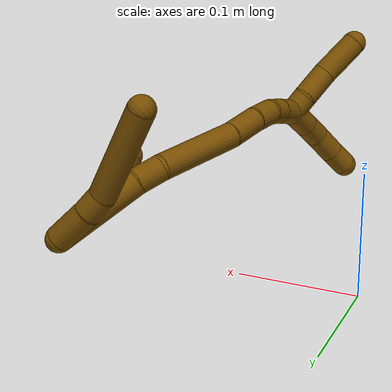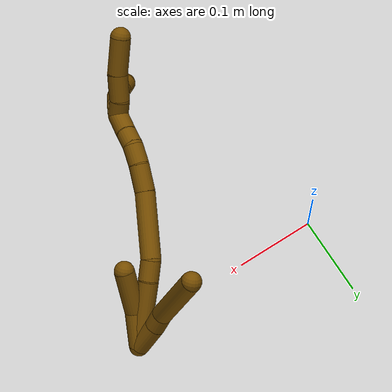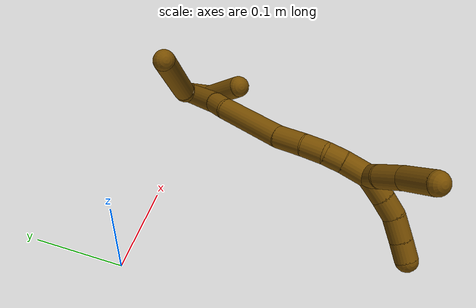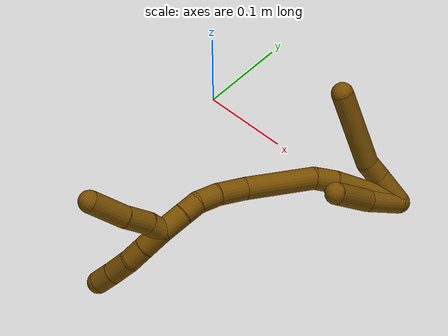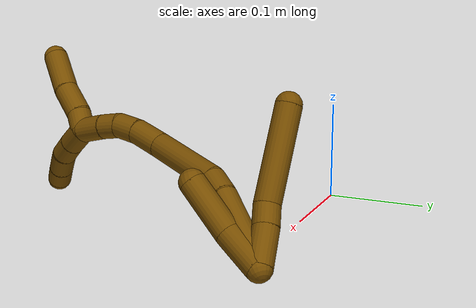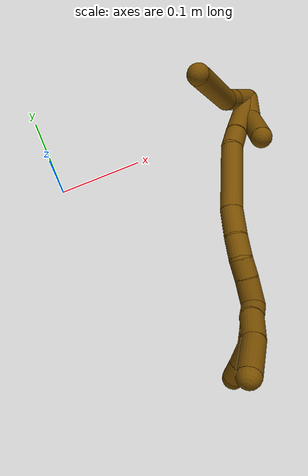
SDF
<sdf version="1.7">
 <world name="default">
  <model name="12">
   <static>0</static>
   <link name="12">
    <collision name="collision-cylinder-e_1_2_8">
     <pose>-0.006769 0.003945 0.017259 -0.224714 -0.365173 0.041661</pose>
     <geometry><cylinder><radius>0.0125</radius><length>0.037908</length></cylinder></geometry>
     <surface>
      <friction><ode><mu>1.16</mu><mu2>1.16</mu2><slip1>0</slip1><slip2>0</slip2></ode></friction>
      <contact><ode><kp>1e+06</kp><kd>1</kd><max_vel>0</max_vel><min_depth>0.001</min_depth></ode></contact>
     </surface>
    </collision>
    <visual name="visual-cylinder-e_1_2_8">
     <pose>-0.006769 0.003945 0.017259 -0.224714 -0.365173 0.041661</pose>
     <geometry><cylinder><radius>0.0125</radius><length>0.037908</length></cylinder></geometry>
     <material><ambient>0.466667 0.301961 0 1</ambient></material>
    </visual>
    <collision name="collision-cylinder-e_2_8_9">
     <pose>-0.016147 0.010378 0.044635 -0.241126 -0.245429 0.029882</pose>
     <geometry><cylinder><radius>0.0125</radius><length>0.021481</length></cylinder></geometry>
     <surface>
      <friction><ode><mu>1.16</mu><mu2>1.16</mu2><slip1>0</slip1><slip2>0</slip2></ode></friction>
      <contact><ode><kp>1e+06</kp><kd>1</kd><max_vel>0</max_vel><min_depth>0.001</min_depth></ode></contact>
     </surface>
    </collision>
    <visual name="visual-cylinder-e_2_8_9">
     <pose>-0.016147 0.010378 0.044635 -0.241126 -0.245429 0.029882</pose>
     <geometry><cylinder><radius>0.0125</radius><length>0.021481</length></cylinder></geometry>
     <material><ambient>0.466667 0.301961 0 1</ambient></material>
    </visual>
    <collision name="collision-cylinder-e_3_9_6">
     <pose>-0.02982 0.036551 0.091755 -0.569373 -0.24669 0.072527</pose>
     <geometry><cylinder><radius>0.0125</radius><length>0.090611</length></cylinder></geometry>
     <surface>
      <friction><ode><mu>1.16</mu><mu2>1.16</mu2><slip1>0</slip1><slip2>0</slip2></ode></friction>
      <contact><ode><kp>1e+06</kp><kd>1</kd><max_vel>0</max_vel><min_depth>0.001</min_depth></ode></contact>
     </surface>
    </collision>
    <visual name="visual-cylinder-e_3_9_6">
     <pose>-0.02982 0.036551 0.091755 -0.569373 -0.24669 0.072527</pose>
     <geometry><cylinder><radius>0.0125</radius><length>0.090611</length></cylinder></geometry>
     <material><ambient>0.466667 0.301961 0 1</ambient></material>
    </visual>
    <collision name="collision-cylinder-e_1_2_10">
     <pose>0.006273 -0.005224 0.02043 0.250328 0.289146 0.036632</pose>
     <geometry><cylinder><radius>0.0125</radius><length>0.044001</length></cylinder></geometry>
     <surface>
      <friction><ode><mu>1.16</mu><mu2>1.16</mu2><slip1>0</slip1><slip2>0</slip2></ode></friction>
      <contact><ode><kp>1e+06</kp><kd>1</kd><max_vel>0</max_vel><min_depth>0.001</min_depth></ode></contact>
     </surface>
    </collision>
    <visual name="visual-cylinder-e_1_2_10">
     <pose>0.006273 -0.005224 0.02043 0.250328 0.289146 0.036632</pose>
     <geometry><cylinder><radius>0.0125</radius><length>0.044001</length></cylinder></geometry>
     <material><ambient>0.466667 0.301961 0 1</ambient></material>
    </visual>
    <collision name="collision-cylinder-e_2_10_5">
     <pose>0.023285 -0.009918 0.066713 -0.020496 0.393619 -0.004087</pose>
     <geometry><cylinder><radius>0.0125</radius><length>0.055999</length></cylinder></geometry>
     <surface>
      <friction><ode><mu>1.16</mu><mu2>1.16</mu2><slip1>0</slip1><slip2>0</slip2></ode></friction>
      <contact><ode><kp>1e+06</kp><kd>1</kd><max_vel>0</max_vel><min_depth>0.001</min_depth></ode></contact>
     </surface>
    </collision>
    <visual name="visual-cylinder-e_2_10_5">
     <pose>0.023285 -0.009918 0.066713 -0.020496 0.393619 -0.004087</pose>
     <geometry><cylinder><radius>0.0125</radius><length>0.055999</length></cylinder></geometry>
     <material><ambient>0.466667 0.301961 0 1</ambient></material>
    </visual>
    <collision name="collision-cylinder-e_1_2_11">
     <pose>0.001624 -0.00761 0.041193 0.182679 0.038754 0.00355</pose>
     <geometry><cylinder><radius>0.0125</radius><length>0.083844</length></cylinder></geometry>
     <surface>
      <friction><ode><mu>1.16</mu><mu2>1.16</mu2><slip1>0</slip1><slip2>0</slip2></ode></friction>
      <contact><ode><kp>1e+06</kp><kd>1</kd><max_vel>0</max_vel><min_depth>0.001</min_depth></ode></contact>
     </surface>
    </collision>
    <visual name="visual-cylinder-e_1_2_11">
     <pose>0.001624 -0.00761 0.041193 0.182679 0.038754 0.00355</pose>
     <geometry><cylinder><radius>0.0125</radius><length>0.083844</length></cylinder></geometry>
     <material><ambient>0.466667 0.301961 0 1</ambient></material>
    </visual>
    <collision name="collision-cylinder-e_2_11_12">
     <pose>0.003902 -0.019362 0.094423 0.331438 0.051321 0.008585</pose>
     <geometry><cylinder><radius>0.0125</radius><length>0.025492</length></cylinder></geometry>
     <surface>
      <friction><ode><mu>1.16</mu><mu2>1.16</mu2><slip1>0</slip1><slip2>0</slip2></ode></friction>
      <contact><ode><kp>1e+06</kp><kd>1</kd><max_vel>0</max_vel><min_depth>0.001</min_depth></ode></contact>
     </surface>
    </collision>
    <visual name="visual-cylinder-e_2_11_12">
     <pose>0.003902 -0.019362 0.094423 0.331438 0.051321 0.008585</pose>
     <geometry><cylinder><radius>0.0125</radius><length>0.025492</length></cylinder></geometry>
     <material><ambient>0.466667 0.301961 0 1</ambient></material>
    </visual>
    <collision name="collision-cylinder-e_3_12_13">
     <pose>0.01458 -0.04452 0.140306 0.555671 0.246496 0.070632</pose>
     <geometry><cylinder><radius>0.0125</radius><length>0.082163</length></cylinder></geometry>
     <surface>
      <friction><ode><mu>1.16</mu><mu2>1.16</mu2><slip1>0</slip1><slip2>0</slip2></ode></friction>
      <contact><ode><kp>1e+06</kp><kd>1</kd><max_vel>0</max_vel><min_depth>0.001</min_depth></ode></contact>
     </surface>
    </collision>
    <visual name="visual-cylinder-e_3_12_13">
     <pose>0.01458 -0.04452 0.140306 0.555671 0.246496 0.070632</pose>
     <geometry><cylinder><radius>0.0125</radius><length>0.082163</length></cylinder></geometry>
     <material><ambient>0.466667 0.301961 0 1</ambient></material>
    </visual>
    <collision name="collision-cylinder-e_4_13_14">
     <pose>0.030892 -0.072985 0.187894 0.496671 0.382439 0.098096</pose>
     <geometry><cylinder><radius>0.0125</radius><length>0.033697</length></cylinder></geometry>
     <surface>
      <friction><ode><mu>1.16</mu><mu2>1.16</mu2><slip1>0</slip1><slip2>0</slip2></ode></friction>
      <contact><ode><kp>1e+06</kp><kd>1</kd><max_vel>0</max_vel><min_depth>0.001</min_depth></ode></contact>
     </surface>
    </collision>
    <visual name="visual-cylinder-e_4_13_14">
     <pose>0.030892 -0.072985 0.187894 0.496671 0.382439 0.098096</pose>
     <geometry><cylinder><radius>0.0125</radius><length>0.033697</length></cylinder></geometry>
     <material><ambient>0.466667 0.301961 0 1</ambient></material>
    </visual>
    <collision name="collision-cylinder-e_5_14_15">
     <pose>0.042671 -0.087374 0.210578 0.660124 0.451719 0.157119</pose>
     <geometry><cylinder><radius>0.0125</radius><length>0.025161</length></cylinder></geometry>
     <surface>
      <friction><ode><mu>1.16</mu><mu2>1.16</mu2><slip1>0</slip1><slip2>0</slip2></ode></friction>
      <contact><ode><kp>1e+06</kp><kd>1</kd><max_vel>0</max_vel><min_depth>0.001</min_depth></ode></contact>
     </surface>
    </collision>
    <visual name="visual-cylinder-e_5_14_15">
     <pose>0.042671 -0.087374 0.210578 0.660124 0.451719 0.157119</pose>
     <geometry><cylinder><radius>0.0125</radius><length>0.025161</length></cylinder></geometry>
     <material><ambient>0.466667 0.301961 0 1</ambient></material>
    </visual>
    <collision name="collision-cylinder-e_6_15_16">
     <pose>0.053296 -0.101761 0.224151 1.01423 0.529571 0.299043</pose>
     <geometry><cylinder><radius>0.0125</radius><length>0.020323</length></cylinder></geometry>
     <surface>
      <friction><ode><mu>1.16</mu><mu2>1.16</mu2><slip1>0</slip1><slip2>0</slip2></ode></friction>
      <contact><ode><kp>1e+06</kp><kd>1</kd><max_vel>0</max_vel><min_depth>0.001</min_depth></ode></contact>
     </surface>
    </collision>
    <visual name="visual-cylinder-e_6_15_16">
     <pose>0.053296 -0.101761 0.224151 1.01423 0.529571 0.299043</pose>
     <geometry><cylinder><radius>0.0125</radius><length>0.020323</length></cylinder></geometry>
     <material><ambient>0.466667 0.301961 0 1</ambient></material>
    </visual>
    <collision name="collision-cylinder-e_7_16_1">
     <pose>0.06509 -0.120751 0.234889 1.08437 0.471638 0.287505</pose>
     <geometry><cylinder><radius>0.0125</radius><length>0.029319</length></cylinder></geometry>
     <surface>
      <friction><ode><mu>1.16</mu><mu2>1.16</mu2><slip1>0</slip1><slip2>0</slip2></ode></friction>
      <contact><ode><kp>1e+06</kp><kd>1</kd><max_vel>0</max_vel><min_depth>0.001</min_depth></ode></contact>
     </surface>
    </collision>
    <visual name="visual-cylinder-e_7_16_1">
     <pose>0.06509 -0.120751 0.234889 1.08437 0.471638 0.287505</pose>
     <geometry><cylinder><radius>0.0125</radius><length>0.029319</length></cylinder></geometry>
     <material><ambient>0.466667 0.301961 0 1</ambient></material>
    </visual>
    <collision name="collision-cylinder-e_1_1_17">
     <pose>0.0734 -0.145695 0.242677 1.44581 0.121509 0.107227</pose>
     <geometry><cylinder><radius>0.0125</radius><length>0.027209</length></cylinder></geometry>
     <surface>
      <friction><ode><mu>1.16</mu><mu2>1.16</mu2><slip1>0</slip1><slip2>0</slip2></ode></friction>
      <contact><ode><kp>1e+06</kp><kd>1</kd><max_vel>0</max_vel><min_depth>0.001</min_depth></ode></contact>
     </surface>
    </collision>
    <visual name="visual-cylinder-e_1_1_17">
     <pose>0.0734 -0.145695 0.242677 1.44581 0.121509 0.107227</pose>
     <geometry><cylinder><radius>0.0125</radius><length>0.027209</length></cylinder></geometry>
     <material><ambient>0.466667 0.301961 0 1</ambient></material>
    </visual>
    <collision name="collision-cylinder-e_2_17_18">
     <pose>0.075998 -0.170386 0.245482 1.47187 0.083437 0.075573</pose>
     <geometry><cylinder><radius>0.0125</radius><length>0.022776</length></cylinder></geometry>
     <surface>
      <friction><ode><mu>1.16</mu><mu2>1.16</mu2><slip1>0</slip1><slip2>0</slip2></ode></friction>
      <contact><ode><kp>1e+06</kp><kd>1</kd><max_vel>0</max_vel><min_depth>0.001</min_depth></ode></contact>
     </surface>
    </collision>
    <visual name="visual-cylinder-e_2_17_18">
     <pose>0.075998 -0.170386 0.245482 1.47187 0.083437 0.075573</pose>
     <geometry><cylinder><radius>0.0125</radius><length>0.022776</length></cylinder></geometry>
     <material><ambient>0.466667 0.301961 0 1</ambient></material>
    </visual>
    <collision name="collision-cylinder-e_3_18_19">
     <pose>0.074767 -0.195187 0.247248 1.52304 -0.159777 -0.152353</pose>
     <geometry><cylinder><radius>0.0125</radius><length>0.027396</length></cylinder></geometry>
     <surface>
      <friction><ode><mu>1.16</mu><mu2>1.16</mu2><slip1>0</slip1><slip2>0</slip2></ode></friction>
      <contact><ode><kp>1e+06</kp><kd>1</kd><max_vel>0</max_vel><min_depth>0.001</min_depth></ode></contact>
     </surface>
    </collision>
    <visual name="visual-cylinder-e_3_18_19">
     <pose>0.074767 -0.195187 0.247248 1.52304 -0.159777 -0.152353</pose>
     <geometry><cylinder><radius>0.0125</radius><length>0.027396</length></cylinder></geometry>
     <material><ambient>0.466667 0.301961 0 1</ambient></material>
    </visual>
    <collision name="collision-cylinder-e_4_19_4">
     <pose>0.070407 -0.219766 0.248656 1.50208 -0.194053 -0.181229</pose>
     <geometry><cylinder><radius>0.0125</radius><length>0.02262</length></cylinder></geometry>
     <surface>
      <friction><ode><mu>1.16</mu><mu2>1.16</mu2><slip1>0</slip1><slip2>0</slip2></ode></friction>
      <contact><ode><kp>1e+06</kp><kd>1</kd><max_vel>0</max_vel><min_depth>0.001</min_depth></ode></contact>
     </surface>
    </collision>
    <visual name="visual-cylinder-e_4_19_4">
     <pose>0.070407 -0.219766 0.248656 1.50208 -0.194053 -0.181229</pose>
     <geometry><cylinder><radius>0.0125</radius><length>0.02262</length></cylinder></geometry>
     <material><ambient>0.466667 0.301961 0 1</ambient></material>
    </visual>
    <collision name="collision-cylinder-e_1_1_20">
     <pose>0.072444 -0.131349 0.251135 -0.093077 0.067996 -0.003168</pose>
     <geometry><cylinder><radius>0.0125</radius><length>0.020419</length></cylinder></geometry>
     <surface>
      <friction><ode><mu>1.16</mu><mu2>1.16</mu2><slip1>0</slip1><slip2>0</slip2></ode></friction>
      <contact><ode><kp>1e+06</kp><kd>1</kd><max_vel>0</max_vel><min_depth>0.001</min_depth></ode></contact>
     </surface>
    </collision>
    <visual name="visual-cylinder-e_1_1_20">
     <pose>0.072444 -0.131349 0.251135 -0.093077 0.067996 -0.003168</pose>
     <geometry><cylinder><radius>0.0125</radius><length>0.020419</length></cylinder></geometry>
     <material><ambient>0.466667 0.301961 0 1</ambient></material>
    </visual>
    <collision name="collision-cylinder-e_2_20_21">
     <pose>0.077038 -0.131274 0.277413 0.05397 0.236814 0.006422</pose>
     <geometry><cylinder><radius>0.0125</radius><length>0.033247</length></cylinder></geometry>
     <surface>
      <friction><ode><mu>1.16</mu><mu2>1.16</mu2><slip1>0</slip1><slip2>0</slip2></ode></friction>
      <contact><ode><kp>1e+06</kp><kd>1</kd><max_vel>0</max_vel><min_depth>0.001</min_depth></ode></contact>
     </surface>
    </collision>
    <visual name="visual-cylinder-e_2_20_21">
     <pose>0.077038 -0.131274 0.277413 0.05397 0.236814 0.006422</pose>
     <geometry><cylinder><radius>0.0125</radius><length>0.033247</length></cylinder></geometry>
     <material><ambient>0.466667 0.301961 0 1</ambient></material>
    </visual>
    <collision name="collision-cylinder-e_3_21_3">
     <pose>0.082825 -0.132598 0.316635 0.019572 0.081565 0.000799</pose>
     <geometry><cylinder><radius>0.0125</radius><length>0.046334</length></cylinder></geometry>
     <surface>
      <friction><ode><mu>1.16</mu><mu2>1.16</mu2><slip1>0</slip1><slip2>0</slip2></ode></friction>
      <contact><ode><kp>1e+06</kp><kd>1</kd><max_vel>0</max_vel><min_depth>0.001</min_depth></ode></contact>
     </surface>
    </collision>
    <visual name="visual-cylinder-e_3_21_3">
     <pose>0.082825 -0.132598 0.316635 0.019572 0.081565 0.000799</pose>
     <geometry><cylinder><radius>0.0125</radius><length>0.046334</length></cylinder></geometry>
     <material><ambient>0.466667 0.301961 0 1</ambient></material>
    </visual>
    <collision name="collision-sphere-3">
     <pose>0.084713 -0.13305 0.339721 0 -0 0</pose>
     <geometry><sphere><radius>0.0125</radius></sphere></geometry>
     <surface>
      <friction><ode><mu>1.16</mu><mu2>1.16</mu2><slip1>0</slip1><slip2>0</slip2></ode></friction>
      <contact><ode><kp>1e+06</kp><kd>1</kd><max_vel>0</max_vel><min_depth>0.001</min_depth></ode></contact>
     </surface>
    </collision>
    <visual name="visual-sphere-3">
     <pose>0.084713 -0.13305 0.339721 0 -0 0</pose>
     <geometry><sphere><radius>0.0125</radius></sphere></geometry>
     <material><ambient>0.466667 0.301961 0 1</ambient></material>
    </visual>
    <collision name="collision-sphere-21">
     <pose>0.080938 -0.132146 0.293549 0 -0 0</pose>
     <geometry><sphere><radius>0.0125</radius></sphere></geometry>
     <surface>
      <friction><ode><mu>1.16</mu><mu2>1.16</mu2><slip1>0</slip1><slip2>0</slip2></ode></friction>
      <contact><ode><kp>1e+06</kp><kd>1</kd><max_vel>0</max_vel><min_depth>0.001</min_depth></ode></contact>
     </surface>
    </collision>
    <visual name="visual-sphere-21">
     <pose>0.080938 -0.132146 0.293549 0 -0 0</pose>
     <geometry><sphere><radius>0.0125</radius></sphere></geometry>
     <material><ambient>0.466667 0.301961 0 1</ambient></material>
    </visual>
    <collision name="collision-sphere-20">
     <pose>0.073138 -0.130403 0.261277 0 -0 0</pose>
     <geometry><sphere><radius>0.0125</radius></sphere></geometry>
     <surface>
      <friction><ode><mu>1.16</mu><mu2>1.16</mu2><slip1>0</slip1><slip2>0</slip2></ode></friction>
      <contact><ode><kp>1e+06</kp><kd>1</kd><max_vel>0</max_vel><min_depth>0.001</min_depth></ode></contact>
     </surface>
    </collision>
    <visual name="visual-sphere-20">
     <pose>0.073138 -0.130403 0.261277 0 -0 0</pose>
     <geometry><sphere><radius>0.0125</radius></sphere></geometry>
     <material><ambient>0.466667 0.301961 0 1</ambient></material>
    </visual>
    <collision name="collision-sphere-4">
     <pose>0.068226 -0.230838 0.249418 0 -0 0</pose>
     <geometry><sphere><radius>0.0125</radius></sphere></geometry>
     <surface>
      <friction><ode><mu>1.16</mu><mu2>1.16</mu2><slip1>0</slip1><slip2>0</slip2></ode></friction>
      <contact><ode><kp>1e+06</kp><kd>1</kd><max_vel>0</max_vel><min_depth>0.001</min_depth></ode></contact>
     </surface>
    </collision>
    <visual name="visual-sphere-4">
     <pose>0.068226 -0.230838 0.249418 0 -0 0</pose>
     <geometry><sphere><radius>0.0125</radius></sphere></geometry>
     <material><ambient>0.466667 0.301961 0 1</ambient></material>
    </visual>
    <collision name="collision-sphere-5">
     <pose>0.034024 -0.009388 0.092566 0 -0 0</pose>
     <geometry><sphere><radius>0.0125</radius></sphere></geometry>
     <surface>
      <friction><ode><mu>1.16</mu><mu2>1.16</mu2><slip1>0</slip1><slip2>0</slip2></ode></friction>
      <contact><ode><kp>1e+06</kp><kd>1</kd><max_vel>0</max_vel><min_depth>0.001</min_depth></ode></contact>
     </surface>
    </collision>
    <visual name="visual-sphere-5">
     <pose>0.034024 -0.009388 0.092566 0 -0 0</pose>
     <geometry><sphere><radius>0.0125</radius></sphere></geometry>
     <material><ambient>0.466667 0.301961 0 1</ambient></material>
    </visual>
    <collision name="collision-sphere-10">
     <pose>0.012546 -0.010448 0.04086 0 -0 0</pose>
     <geometry><sphere><radius>0.0125</radius></sphere></geometry>
     <surface>
      <friction><ode><mu>1.16</mu><mu2>1.16</mu2><slip1>0</slip1><slip2>0</slip2></ode></friction>
      <contact><ode><kp>1e+06</kp><kd>1</kd><max_vel>0</max_vel><min_depth>0.001</min_depth></ode></contact>
     </surface>
    </collision>
    <visual name="visual-sphere-10">
     <pose>0.012546 -0.010448 0.04086 0 -0 0</pose>
     <geometry><sphere><radius>0.0125</radius></sphere></geometry>
     <material><ambient>0.466667 0.301961 0 1</ambient></material>
    </visual>
    <collision name="collision-sphere-6">
     <pose>-0.040883 0.060236 0.128758 0 -0 0</pose>
     <geometry><sphere><radius>0.0125</radius></sphere></geometry>
     <surface>
      <friction><ode><mu>1.16</mu><mu2>1.16</mu2><slip1>0</slip1><slip2>0</slip2></ode></friction>
      <contact><ode><kp>1e+06</kp><kd>1</kd><max_vel>0</max_vel><min_depth>0.001</min_depth></ode></contact>
     </surface>
    </collision>
    <visual name="visual-sphere-6">
     <pose>-0.040883 0.060236 0.128758 0 -0 0</pose>
     <geometry><sphere><radius>0.0125</radius></sphere></geometry>
     <material><ambient>0.466667 0.301961 0 1</ambient></material>
    </visual>
    <collision name="collision-sphere-9">
     <pose>-0.018757 0.012866 0.054752 0 -0 0</pose>
     <geometry><sphere><radius>0.0125</radius></sphere></geometry>
     <surface>
      <friction><ode><mu>1.16</mu><mu2>1.16</mu2><slip1>0</slip1><slip2>0</slip2></ode></friction>
      <contact><ode><kp>1e+06</kp><kd>1</kd><max_vel>0</max_vel><min_depth>0.001</min_depth></ode></contact>
     </surface>
    </collision>
    <visual name="visual-sphere-9">
     <pose>-0.018757 0.012866 0.054752 0 -0 0</pose>
     <geometry><sphere><radius>0.0125</radius></sphere></geometry>
     <material><ambient>0.466667 0.301961 0 1</ambient></material>
    </visual>
    <collision name="collision-sphere-2">
     <geometry><sphere><radius>0.0125</radius></sphere></geometry>
     <surface>
      <friction><ode><mu>1.16</mu><mu2>1.16</mu2><slip1>0</slip1><slip2>0</slip2></ode></friction>
      <contact><ode><kp>1e+06</kp><kd>1</kd><max_vel>0</max_vel><min_depth>0.001</min_depth></ode></contact>
     </surface>
    </collision>
    <visual name="visual-sphere-2">
     <geometry><sphere><radius>0.0125</radius></sphere></geometry>
     <material><ambient>0.466667 0.301961 0 1</ambient></material>
    </visual>
    <collision name="collision-sphere-19">
     <pose>0.072588 -0.208695 0.247894 0 -0 0</pose>
     <geometry><sphere><radius>0.0125</radius></sphere></geometry>
     <surface>
      <friction><ode><mu>1.16</mu><mu2>1.16</mu2><slip1>0</slip1><slip2>0</slip2></ode></friction>
      <contact><ode><kp>1e+06</kp><kd>1</kd><max_vel>0</max_vel><min_depth>0.001</min_depth></ode></contact>
     </surface>
    </collision>
    <visual name="visual-sphere-19">
     <pose>0.072588 -0.208695 0.247894 0 -0 0</pose>
     <geometry><sphere><radius>0.0125</radius></sphere></geometry>
     <material><ambient>0.466667 0.301961 0 1</ambient></material>
    </visual>
    <collision name="collision-sphere-8">
     <pose>-0.013537 0.00789 0.034518 0 -0 0</pose>
     <geometry><sphere><radius>0.0125</radius></sphere></geometry>
     <surface>
      <friction><ode><mu>1.16</mu><mu2>1.16</mu2><slip1>0</slip1><slip2>0</slip2></ode></friction>
      <contact><ode><kp>1e+06</kp><kd>1</kd><max_vel>0</max_vel><min_depth>0.001</min_depth></ode></contact>
     </surface>
    </collision>
    <visual name="visual-sphere-8">
     <pose>-0.013537 0.00789 0.034518 0 -0 0</pose>
     <geometry><sphere><radius>0.0125</radius></sphere></geometry>
     <material><ambient>0.466667 0.301961 0 1</ambient></material>
    </visual>
    <collision name="collision-sphere-11">
     <pose>0.003248 -0.01522 0.082387 0 -0 0</pose>
     <geometry><sphere><radius>0.0125</radius></sphere></geometry>
     <surface>
      <friction><ode><mu>1.16</mu><mu2>1.16</mu2><slip1>0</slip1><slip2>0</slip2></ode></friction>
      <contact><ode><kp>1e+06</kp><kd>1</kd><max_vel>0</max_vel><min_depth>0.001</min_depth></ode></contact>
     </surface>
    </collision>
    <visual name="visual-sphere-11">
     <pose>0.003248 -0.01522 0.082387 0 -0 0</pose>
     <geometry><sphere><radius>0.0125</radius></sphere></geometry>
     <material><ambient>0.466667 0.301961 0 1</ambient></material>
    </visual>
    <collision name="collision-sphere-12">
     <pose>0.004556 -0.023504 0.10646 0 -0 0</pose>
     <geometry><sphere><radius>0.0125</radius></sphere></geometry>
     <surface>
      <friction><ode><mu>1.16</mu><mu2>1.16</mu2><slip1>0</slip1><slip2>0</slip2></ode></friction>
      <contact><ode><kp>1e+06</kp><kd>1</kd><max_vel>0</max_vel><min_depth>0.001</min_depth></ode></contact>
     </surface>
    </collision>
    <visual name="visual-sphere-12">
     <pose>0.004556 -0.023504 0.10646 0 -0 0</pose>
     <geometry><sphere><radius>0.0125</radius></sphere></geometry>
     <material><ambient>0.466667 0.301961 0 1</ambient></material>
    </visual>
    <collision name="collision-sphere-13">
     <pose>0.024604 -0.065536 0.174151 0 -0 0</pose>
     <geometry><sphere><radius>0.0125</radius></sphere></geometry>
     <surface>
      <friction><ode><mu>1.16</mu><mu2>1.16</mu2><slip1>0</slip1><slip2>0</slip2></ode></friction>
      <contact><ode><kp>1e+06</kp><kd>1</kd><max_vel>0</max_vel><min_depth>0.001</min_depth></ode></contact>
     </surface>
    </collision>
    <visual name="visual-sphere-13">
     <pose>0.024604 -0.065536 0.174151 0 -0 0</pose>
     <geometry><sphere><radius>0.0125</radius></sphere></geometry>
     <material><ambient>0.466667 0.301961 0 1</ambient></material>
    </visual>
    <collision name="collision-sphere-14">
     <pose>0.03718 -0.080433 0.201637 0 -0 0</pose>
     <geometry><sphere><radius>0.0125</radius></sphere></geometry>
     <surface>
      <friction><ode><mu>1.16</mu><mu2>1.16</mu2><slip1>0</slip1><slip2>0</slip2></ode></friction>
      <contact><ode><kp>1e+06</kp><kd>1</kd><max_vel>0</max_vel><min_depth>0.001</min_depth></ode></contact>
     </surface>
    </collision>
    <visual name="visual-sphere-14">
     <pose>0.03718 -0.080433 0.201637 0 -0 0</pose>
     <geometry><sphere><radius>0.0125</radius></sphere></geometry>
     <material><ambient>0.466667 0.301961 0 1</ambient></material>
    </visual>
    <collision name="collision-sphere-15">
     <pose>0.048163 -0.094315 0.219519 0 -0 0</pose>
     <geometry><sphere><radius>0.0125</radius></sphere></geometry>
     <surface>
      <friction><ode><mu>1.16</mu><mu2>1.16</mu2><slip1>0</slip1><slip2>0</slip2></ode></friction>
      <contact><ode><kp>1e+06</kp><kd>1</kd><max_vel>0</max_vel><min_depth>0.001</min_depth></ode></contact>
     </surface>
    </collision>
    <visual name="visual-sphere-15">
     <pose>0.048163 -0.094315 0.219519 0 -0 0</pose>
     <geometry><sphere><radius>0.0125</radius></sphere></geometry>
     <material><ambient>0.466667 0.301961 0 1</ambient></material>
    </visual>
    <collision name="collision-sphere-16">
     <pose>0.058429 -0.109207 0.228784 0 -0 0</pose>
     <geometry><sphere><radius>0.0125</radius></sphere></geometry>
     <surface>
      <friction><ode><mu>1.16</mu><mu2>1.16</mu2><slip1>0</slip1><slip2>0</slip2></ode></friction>
      <contact><ode><kp>1e+06</kp><kd>1</kd><max_vel>0</max_vel><min_depth>0.001</min_depth></ode></contact>
     </surface>
    </collision>
    <visual name="visual-sphere-16">
     <pose>0.058429 -0.109207 0.228784 0 -0 0</pose>
     <geometry><sphere><radius>0.0125</radius></sphere></geometry>
     <material><ambient>0.466667 0.301961 0 1</ambient></material>
    </visual>
    <collision name="collision-sphere-1">
     <pose>0.071751 -0.132296 0.240994 0 -0 0</pose>
     <geometry><sphere><radius>0.0125</radius></sphere></geometry>
     <surface>
      <friction><ode><mu>1.16</mu><mu2>1.16</mu2><slip1>0</slip1><slip2>0</slip2></ode></friction>
      <contact><ode><kp>1e+06</kp><kd>1</kd><max_vel>0</max_vel><min_depth>0.001</min_depth></ode></contact>
     </surface>
    </collision>
    <visual name="visual-sphere-1">
     <pose>0.071751 -0.132296 0.240994 0 -0 0</pose>
     <geometry><sphere><radius>0.0125</radius></sphere></geometry>
     <material><ambient>0.466667 0.301961 0 1</ambient></material>
    </visual>
    <collision name="collision-sphere-18">
     <pose>0.076947 -0.181679 0.246603 0 -0 0</pose>
     <geometry><sphere><radius>0.0125</radius></sphere></geometry>
     <surface>
      <friction><ode><mu>1.16</mu><mu2>1.16</mu2><slip1>0</slip1><slip2>0</slip2></ode></friction>
      <contact><ode><kp>1e+06</kp><kd>1</kd><max_vel>0</max_vel><min_depth>0.001</min_depth></ode></contact>
     </surface>
    </collision>
    <visual name="visual-sphere-18">
     <pose>0.076947 -0.181679 0.246603 0 -0 0</pose>
     <geometry><sphere><radius>0.0125</radius></sphere></geometry>
     <material><ambient>0.466667 0.301961 0 1</ambient></material>
    </visual>
    <collision name="collision-sphere-17">
     <pose>0.075049 -0.159094 0.244361 0 -0 0</pose>
     <geometry><sphere><radius>0.0125</radius></sphere></geometry>
     <surface>
      <friction><ode><mu>1.16</mu><mu2>1.16</mu2><slip1>0</slip1><slip2>0</slip2></ode></friction>
      <contact><ode><kp>1e+06</kp><kd>1</kd><max_vel>0</max_vel><min_depth>0.001</min_depth></ode></contact>
     </surface>
    </collision>
    <visual name="visual-sphere-17">
     <pose>0.075049 -0.159094 0.244361 0 -0 0</pose>
     <geometry><sphere><radius>0.0125</radius></sphere></geometry>
     <material><ambient>0.466667 0.301961 0 1</ambient></material>
    </visual>
    <inertial>
     <pose>0.026749 -0.058014 0.144849 0 -0 0</pose>
     <mass>0.75</mass>
     <inertia>
      <ixx>0.000248</ixx>
      <ixy>0</ixy>
      <ixz>0</ixz>
      <iyy>0.000207</iyy>
      <iyz>0</iyz>
      <izz>5.1e-05</izz>
     </inertia>
    </inertial>
   </link>
   <pose>0.261515 0.020759 0.011478 0.850834 -0.146278 -0.69823</pose>
  </model>
 </world>
</sdf>
